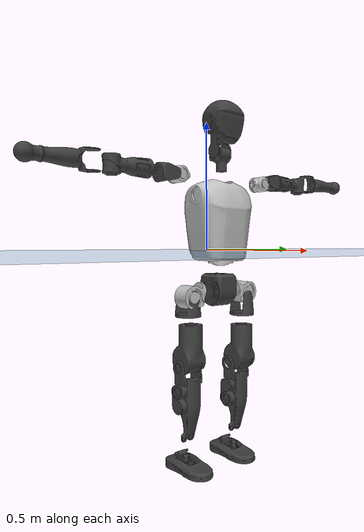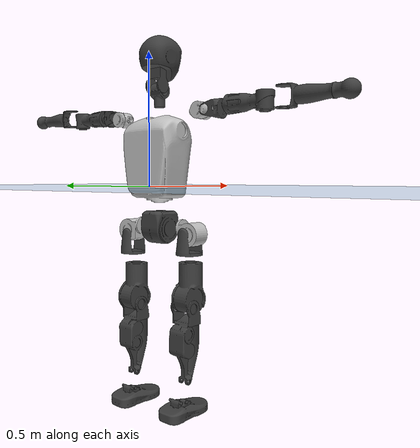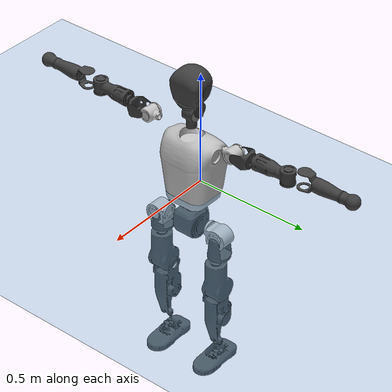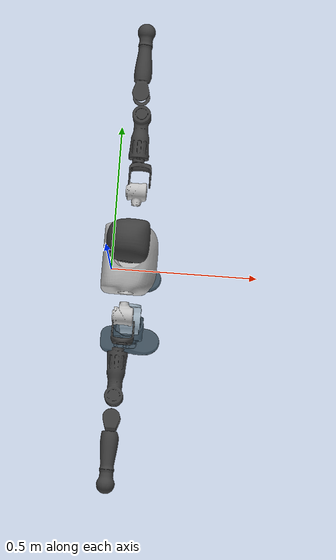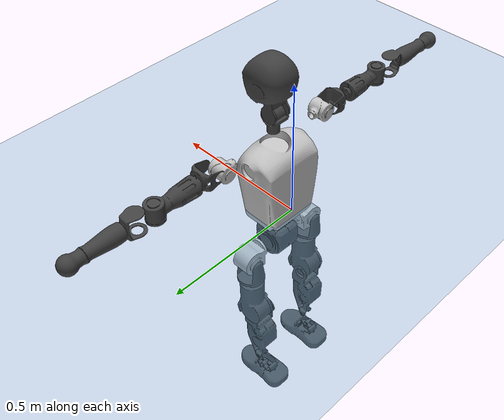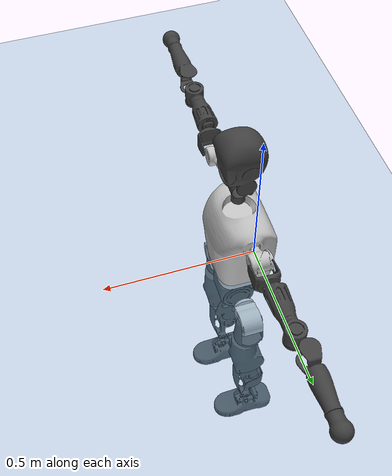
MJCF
<mujoco model="T1">
  <compiler angle="radian" assetdir="assets" balanceinertia="true" inertiafromgeom="false"/>

  <option timestep="0.005" density="1.2" viscosity="2e-05"/>

  <size nkey="1"/>

  <visual>
    <quality shadowsize="8192"/>
    <map shadowclip="0.5"/>
  </visual>

  <default>
    <default class="/">
      <joint armature="0.01" damping="0.01" frictionloss="0.1"/>
      <geom contype="0" conaffinity="0" group="1" solref="-1000 -80"/>
      <site size="0.01 0.005 0.005" group="5"/>
      <general forcelimited="true" biastype="affine" gainprm="25" biasprm="0 -25 -0.6"/>
      <default class="t1">
        <geom rgba="0.25 0.25 0.25 1"/>
        <default class="visual">
          <geom type="mesh" group="2"/>
        </default>
        <default class="collision">
          <geom group="3"/>
        </default>
        <default class="foot">
          <geom size="0.1115 0.05 0.015" type="box" condim="6" group="4" priority="1" solimp="0.015 1 0.015"/>
        </default>
        <default class="reward_collision_sphere">
          <geom group="5" rgba="1 0 0 1"/>
        </default>
      </default>
    </default>
  </default>

  <asset>
    <texture type="skybox" colorspace="auto" name="//unnamed_texture_0" builtin="gradient" rgb1="0.95 0.95 0.95" rgb2="0.95 0.95 0.95" width="100" height="600"/>
    <texture type="2d" colorspace="auto" name="texplane" builtin="checker" rgb1="0.345 0.575 0.748" rgb2="0.345 0.575 0.748" markrgb="1 1 1" width="512" height="512"/>
    <material name="MatPlane" class="/" texture="texplane" texuniform="true" texrepeat="2 2" specular="0.9"/>
    <mesh name="Trunk" class="/" file="Trunk.stl"/>
    <mesh name="H1" class="/" file="H1.stl"/>
    <mesh name="H2" class="/" file="H2.stl"/>
    <mesh name="AL1" class="/" file="AL1.stl"/>
    <mesh name="AL2" class="/" file="AL2.stl"/>
    <mesh name="AL3" class="/" file="AL3.stl"/>
    <mesh name="left_hand_link" class="/" file="left_hand_link.stl"/>
    <mesh name="AR1" class="/" file="AR1.stl"/>
    <mesh name="AR2" class="/" file="AR2.stl"/>
    <mesh name="AR3" class="/" file="AR3.stl"/>
    <mesh name="right_hand_link" class="/" file="right_hand_link.stl"/>
    <mesh name="Waist" class="/" file="Waist.stl"/>
    <mesh name="Hip_Pitch_Left" class="/" file="Hip_Pitch_Left.stl"/>
    <mesh name="Hip_Roll_Left" class="/" file="Hip_Roll_Left.stl"/>
    <mesh name="Hip_Yaw_Left" class="/" file="Hip_Yaw_Left.stl"/>
    <mesh name="Shank_Left" class="/" file="Shank_Left.stl"/>
    <mesh name="Ankle_Cross_Left" class="/" file="Ankle_Cross_Left.stl"/>
    <mesh name="left_foot_link" class="/" file="left_foot_link.stl"/>
    <mesh name="Hip_Pitch_Right" class="/" file="Hip_Pitch_Right.stl"/>
    <mesh name="Hip_Roll_Right" class="/" file="Hip_Roll_Right.stl"/>
    <mesh name="Hip_Yaw_Right" class="/" file="Hip_Yaw_Right.stl"/>
    <mesh name="Shank_Right" class="/" file="Shank_Right.stl"/>
    <mesh name="Ankle_Cross_Right" class="/" file="Ankle_Cross_Right.stl"/>
    <mesh name="right_foot_link" class="/" file="right_foot_link.stl"/>
  </asset>

  <worldbody>
    <geom name="floor" class="/" size="100 100 0.125" type="plane" group="0" material="MatPlane"/>
    <light name="toplight_shadow" class="/" pos="0 0 5" dir="0.0990148 0.0990148 -0.990148" type="directional" ambient="0.04 0.04 0.04" diffuse="0.55 0.55 0.55" specular="0.12 0.12 0.12"/>
    <light name="toplight_fill" class="/" pos="0 0 5" dir="0.0990148 0.0990148 -0.990148" type="directional" castshadow="false" ambient="0.04 0.04 0.04" diffuse="0.3 0.3 0.3" specular="0.08 0.08 0.08"/>
    <body name="trunk" childclass="t1" pos="0.0067101 0.0113263 -0.0081384" quat="0.999991 -0.000209462 0.00143258 -0.00407926">
      <inertial pos="0.0557062 0.00505543 0.127652" quat="0.999971 -0.00406661 0.00639121 0.000190411" mass="25.0637" diaginertia="0.101747 0.405811 0.173788"/>
      <joint name="//unnamed_joint_0" type="free" armature="0" damping="0" frictionloss="0"/>
      <geom name="//unnamed_geom_1" class="visual" rgba="0.76 0.76 0.76 1" mesh="Trunk"/>
      <geom name="//unnamed_geom_2" class="collision" size="0.0949167 0.126556 0.189833" pos="0.0624003 0 0.153772" type="box"/>
      <geom name="//unnamed_geom_3" class="reward_collision_sphere" size="0.145539" pos="0.0624003 0 0.128143"/>
      <geom name="//unnamed_geom_4" class="reward_collision_sphere" size="0.0189833" pos="0.0624003 0.125395 0"/>
      <geom name="//unnamed_geom_5" class="reward_collision_sphere" size="0.0189833" pos="0.0624003 -0.125395 0"/>
      <geom name="//unnamed_geom_6" class="reward_collision_sphere" size="0.0189833" pos="0.0624003 0.15785 0.230658"/>
      <geom name="//unnamed_geom_7" class="reward_collision_sphere" size="0.0189833" pos="0.0624003 -0.15785 0.230658"/>
      <site name="imu" pos="0.0462589 0.0639873 -0.00330914" size="0.0126556"/>
      <camera name="track" pos="0 -2.95046 0" quat="0.707107 0.707107 0 0" mode="trackcom"/>
      <camera name="ego_camera" pos="0.126881 0 0.538202" quat="-0.5 -0.5 0.5 0.5"/>
      <body name="H1" pos="0.0640213 0.00160476 0.311808" quat="0.999992 -0.00361351 -0.001576 -0.000718302">
        <inertial pos="-0.00863682 -0.00373355 0.0647443" quat="0.730704 0.0111859 0.0548275 0.680398" mass="0.868016" diaginertia="0.000268035 0.00129702 0.000545233"/>
        <joint name="AAHead_yaw" pos="0 0 0" axis="0.0206807 -0.0607422 0.997939" stiffness="4.13172e-05" range="-1.38134 1.51673" armature="0.00694131" damping="0.00408598" frictionloss="0.190354"/>
        <geom name="//unnamed_geom_8" class="visual" mesh="H1"/>
        <body name="H2" pos="-0.0121794 0.0025098 0.0806001" quat="1 0.00023442 0.000334626 0.000841071">
          <inertial pos="0.00578336 0.0158008 0.125733" quat="0.989738 0.107208 -0.0566504 -0.0756035" mass="1.45949" diaginertia="0.0027822 0.0181899 0.00676012"/>
          <joint name="Head_pitch" pos="0 0 0" axis="-0.00915741 -0.998464 0.0546368" stiffness="0.0344032" range="-1.16314 0.196703" armature="0.0105304" damping="0.00474826" frictionloss="0.166163"/>
          <geom name="//unnamed_geom_9" class="visual" mesh="H2"/>
          <geom name="//unnamed_geom_10" class="collision" size="0.101244" pos="0.0104 0 0.140958"/>
          <geom name="//unnamed_geom_11" class="reward_collision_sphere" size="0.1139" pos="0.0208001 0 0.128143"/>
        </body>
      </body>
      <body name="AL1" pos="0.0690282 0.164997 0.277682" quat="0.999997 0.00219665 -0.0006255 -0.000121215">
        <inertial pos="-0.00318838 0.0611533 0.0140955" quat="0.527045 0.537117 -0.470464 0.460861" mass="0.855361" diaginertia="0.00134105 0.00739868 0.000843305"/>
        <joint name="Left_Shoulder_Pitch" pos="0 0 0" axis="-0.0520336 0.998097 0.0330789" range="-3.31657 1.35612" armature="0.015731" damping="0.0151368" frictionloss="0.110021"/>
        <geom name="//unnamed_geom_12" class="visual" rgba="0.76 0.76 0.76 1" mesh="AL1"/>
        <body name="AL2" pos="0.00570323 0.0800549 0.0117501" quat="0.999968 -0.00751028 -0.00258076 0.000205587">
          <inertial pos="0.00574048 0.0712544 -0.000485458" quat="0.484918 0.515121 -0.489143 0.510142" mass="0.332654" diaginertia="0.00047432 0.00271389 0.000623279"/>
          <joint name="Left_Shoulder_Roll" pos="0 0 0" axis="-0.996965 0.0726281 0.0280472" stiffness="0.0706323" range="-1.83819 1.8433" armature="0.0172166" damping="0.0816395" frictionloss="0.0448154"/>
          <geom name="//unnamed_geom_13" class="visual" mesh="AL2"/>
          <body name="AL3" pos="-0.00929145 0.0743057 0.00209537" quat="0.999977 0.0043721 -0.00449718 0.00261189">
            <inertial pos="0.0015819 0.137798 0.0056195" quat="0.700745 0.712183 -0.0397976 -0.0129432" mass="1.83056" diaginertia="0.0171818 0.0833401 0.00279188"/>
            <joint name="Left_Elbow_Pitch" pos="0 0 0" axis="0.0409598 -0.998388 0.0393025" stiffness="0.0571934" range="-2.57794 2.55699" armature="0.00354484" damping="0.0766265" frictionloss="0.0586293"/>
            <geom name="//unnamed_geom_14" class="visual" mesh="AL3"/>
            <geom name="//unnamed_geom_15" class="collision" size="0.0379667 0.0949167" pos="0 0.0737616 0" quat="0.707105 0.707108 0 0" type="cylinder"/>
            <geom name="//unnamed_geom_16" class="reward_collision_sphere" size="0.04556"/>
            <body name="left_hand_link" pos="-0.00743415 0.2162 0.0138112" quat="0.999988 -0.000279845 -0.00147327 -0.00463619">
              <inertial pos="-5.61227e-05 0.162485 0.0119073" quat="0.713976 0.700119 0.00261827 -0.00804035" mass="0.6002" diaginertia="0.00909614 0.0595012 0.000712407"/>
              <joint name="Left_Elbow_Yaw" pos="0 0 0" axis="0.0387334 0.0223853 0.998999" range="-2.41857 0.00297379" armature="0.015518" damping="0.0122218" frictionloss="0.0717753"/>
              <geom name="//unnamed_geom_17" class="visual" mesh="left_hand_link"/>
              <geom name="//unnamed_geom_18" class="collision" size="0.0379667 0.110736" pos="0 0.19178 0" quat="0.707105 0.707108 0 0" type="cylinder"/>
              <geom name="//unnamed_geom_19" class="reward_collision_sphere" size="0.0632778"/>
              <geom name="//unnamed_geom_20" class="reward_collision_sphere" size="0.0442945" pos="0 0.162275 0"/>
              <geom name="//unnamed_geom_21" class="reward_collision_sphere" size="0.0442945" pos="0 0.317175 0"/>
            </body>
          </body>
        </body>
      </body>
      <body name="AR1" pos="0.0587719 -0.162739 0.282501" quat="0.999993 -0.0034873 0.00100251 0.000436913">
        <inertial pos="-0.000395914 -0.0534193 -0.0132685" quat="0.504809 0.497009 -0.504884 0.493197" mass="1.06919" diaginertia="0.00179852 0.00886767 0.000832312"/>
        <joint name="Right_Shoulder_Pitch" pos="0 0 0" axis="0.00162571 -0.999998 -0.000650241" range="-1.12274 3.32125" armature="0.0180157" damping="0" frictionloss="0.101856"/>
        <geom name="//unnamed_geom_22" class="visual" rgba="0.76 0.76 0.76 1" mesh="AR1"/>
        <body name="AR2" pos="0.0023214 -0.0813086 -0.000853011" quat="1 2.69279e-05 0.000147832 8.47626e-05">
          <inertial pos="0.00500962 -0.0570284 0.0140575" quat="0.480778 0.504549 -0.533049 0.47973" mass="0.273944" diaginertia="0.000514199 0.00265627 0.000659993"/>
          <joint name="Right_Shoulder_Roll" pos="0 0 0" axis="-0.999958 0.00903259 -0.00161778" range="-1.63416 1.31744" armature="0.0136418" damping="0.0724221" frictionloss="0.133322"/>
          <geom name="//unnamed_geom_23" class="visual" mesh="AR2"/>
          <body name="AR3" pos="-0.0104267 -0.0866404 0.00925392" quat="1 0.000344522 -0.000236845 -0.000759692">
            <inertial pos="-0.00599311 -0.117641 0.00301947" quat="0.705685 0.708525 0.000518822 0.000832932" mass="1.88445" diaginertia="0.0143745 0.0723142 0.00178169"/>
            <joint name="Right_Elbow_Pitch" pos="0 0 0" axis="-0.016101 0.999542 -0.025606" stiffness="0.046145" range="-2.28681 2.25075" armature="0.00408456" damping="0" frictionloss="0.209697"/>
            <geom name="//unnamed_geom_24" class="visual" mesh="AR3"/>
            <geom name="//unnamed_geom_25" class="collision" size="0.0379667 0.0949167" pos="0 -0.0737616 0" quat="0.707105 0.707108 0 0" type="cylinder"/>
            <geom name="//unnamed_geom_26" class="reward_collision_sphere" size="0.04556"/>
            <body name="right_hand_link" pos="-0.00124518 -0.21822 0.00344311" quat="0.999991 0.00133968 0.00158966 -0.00379153">
              <inertial pos="0.00464437 -0.16033 0.0156398" quat="0.669679 0.740789 -0.0170673 -0.049704" mass="0.538795" diaginertia="0.0117107 0.0567812 0.0006698"/>
              <joint name="Right_Elbow_Yaw" pos="0 0 0" axis="-0.022692 -0.035436 0.999114" stiffness="0.0629881" range="0.266054 2.15134" armature="0.0154423" damping="0.0293858" frictionloss="0.0954778"/>
              <geom name="//unnamed_geom_27" class="visual" mesh="right_hand_link"/>
              <geom name="//unnamed_geom_28" class="collision" size="0.0379667 0.110736" pos="0 -0.19178 0" quat="0.707105 0.707108 0 0" type="cylinder"/>
              <geom name="//unnamed_geom_29" class="reward_collision_sphere" size="0.0632778"/>
              <geom name="//unnamed_geom_30" class="reward_collision_sphere" size="0.0442945" pos="0 -0.162275 0"/>
              <geom name="//unnamed_geom_31" class="reward_collision_sphere" size="0.0442945" pos="0 -0.317175 0"/>
            </body>
          </body>
        </body>
      </body>
      <body name="Waist" pos="0.0574733 -0.00612912 -0.15088" quat="0.999995 0.000424401 0.00204548 -0.00241892">
        <inertial pos="-0.000333973 -0.000271944 0.00144626" quat="0.987511 -0.0256438 -0.154229 0.0194137" mass="5.89698" diaginertia="0.00753882 0.0382431 0.0164023"/>
        <joint name="Waist" pos="0 0 0" axis="-0.0578628 -0.0248729 0.998015" stiffness="0.0779134" range="-1.54892 1.59693" armature="0.00885332" damping="0" frictionloss="0.202256"/>
        <geom name="//unnamed_geom_32" class="visual" mesh="Waist"/>
        <body name="Hip_Pitch_Left" pos="-0.00568527 0.143619 0.0061289" quat="0.999995 0.00176364 0.000815281 0.002529">
          <inertial pos="-0.0134255 -0.0182806 -0.0105391" quat="0.969637 0.237977 -0.0533945 0.0178684" mass="1.79077" diaginertia="0.00213832 0.0100835 0.00392808"/>
          <joint name="Left_Hip_Pitch" pos="0 0 0" axis="-0.0362058 0.999322 -0.0066849" stiffness="0.00336222" range="-1.82983 1.30893" armature="0.013866" damping="0.0655824" frictionloss="0.147345"/>
          <geom name="//unnamed_geom_33" class="visual" rgba="0.76 0.76 0.76 1" mesh="Hip_Pitch_Left"/>
          <body name="Hip_Roll_Left" pos="-0.000837602 -0.00404663 -0.0385451" quat="0.999997 -0.00220536 -0.000158777 -0.00114025">
            <inertial pos="0.0107814 -0.0114887 -0.068533" quat="0.67425 -0.0292525 -0.0112522 0.737838" mass="0.872444" diaginertia="0.00208017 0.0144575 0.00215223"/>
            <joint name="Left_Hip_Roll" pos="0 0 0" axis="-0.99942 0.0262225 -0.0217275" stiffness="0.0131939" range="-1.57106 0.0569926" armature="0.0123145" damping="0" frictionloss="0.19087"/>
            <geom name="//unnamed_geom_34" class="visual" mesh="Hip_Roll_Left"/>
            <geom name="//unnamed_geom_35" class="reward_collision_sphere" size="0.0696056"/>
            <body name="Hip_Yaw_Left" pos="0.0065292 -0.010775 -0.115588" quat="1 -0.000337737 -0.000560916 -0.000472451">
              <inertial pos="-0.00788085 0.000322597 -0.111837" quat="0.717852 -0.0385839 0.0314405 0.694414" mass="5.49129" diaginertia="0.0338687 0.186178 0.0105709"/>
              <joint name="Left_Hip_Yaw" pos="0 0 0" axis="-0.0657038 -0.0105708 -0.997783" stiffness="0.0156507" range="-1.16446 1.22345" armature="0.0139654" damping="0" frictionloss="0.125989"/>
              <geom name="//unnamed_geom_36" class="visual" mesh="Hip_Yaw_Left"/>
              <geom name="//unnamed_geom_37" class="collision" size="0.0632778 0.101244" type="cylinder"/>
              <body name="Shank_Left" pos="-0.0254197 -0.0127614 -0.159439" quat="1 0.000234398 -0.000111891 -0.000380421">
                <inertial pos="-0.0100325 0.0148568 -0.159693" quat="0.998148 -0.00720332 -0.0201356 0.0569416" mass="3.56635" diaginertia="0.0347297 0.240604 0.00529978"/>
                <joint name="Left_Knee_Pitch" pos="0 0 0" axis="-0.0199214 0.999696 0.0145612" range="-0.162373 2.35671" armature="0.00892382" damping="0" frictionloss="0.0260444"/>
                <geom name="//unnamed_geom_38" class="visual" mesh="Shank_Left"/>
                <geom name="//unnamed_geom_39" class="collision" size="0.0632778 0.0949167" pos="0 0 -0.153772" type="cylinder"/>
                <geom name="//unnamed_geom_40" class="reward_collision_sphere" size="0.0822612"/>
                <body name="Ankle_Cross_Left" pos="-0.00533544 -0.00378106 -0.349483" quat="1 0.000155426 1.73989e-05 0.000189375">
                  <inertial pos="-0.00259381 0.00155076 -0.0188997" quat="0.438024 0.541934 0.55368 0.455939" mass="0.198672" diaginertia="3.63007e-05 0.000253547 4.8216e-05"/>
                  <joint name="Left_Ankle_Pitch" pos="0 0 0" axis="0.063049 0.997293 -0.0378436" stiffness="0.0704362" range="-0.749134 0.436759" armature="0.0126681" damping="0.00156552" frictionloss="0.17408"/>
                  <geom name="//unnamed_geom_41" class="visual" mesh="Ankle_Cross_Left"/>
                  <body name="left_foot_link" pos="0.000793652 -0.00816746 -0.0163173" quat="0.999973 0.00601942 0.00215639 -0.00360696">
                    <inertial pos="-0.0138049 0.000255275 -0.00511265" quat="-0.044819 0.593905 -0.0147038 0.803151" mass="1.28636" diaginertia="0.00300449 0.0150388 0.0077933"/>
                    <joint name="Left_Ankle_Roll" pos="0 0 0" axis="-0.999849 0.00560733 0.0164357" stiffness="0.00152504" range="-0.470702 0.606196" armature="0.0125189" damping="0.0582568" frictionloss="0.0872029"/>
                    <geom name="//unnamed_geom_42" class="visual" mesh="left_foot_link"/>
                    <geom name="left_foot" class="foot" size="0.0854417 0.0784862 0.0302015" pos="0.0104 0 -0.0192215"/>
                    <geom name="//unnamed_geom_44" class="reward_collision_sphere" size="0.0658089" pos="0.0104 0 -0.0192215"/>
                    <geom name="//unnamed_geom_45" class="reward_collision_sphere" size="0.0379667" pos="0.0988005 -0.0339303 -0.0192215"/>
                    <geom name="//unnamed_geom_46" class="reward_collision_sphere" size="0.0379667" pos="-0.0728003 -0.0339303 -0.0192215"/>
                    <site name="left_foot" class="foot" pos="0.0104 0 -0.0192215" size="0.0126556"/>
                  </body>
                </body>
              </body>
            </body>
          </body>
        </body>
        <body name="Hip_Pitch_Right" pos="0.0113698 -0.15741 0.00450976" quat="0.999988 -0.00106777 -0.00387586 0.00279852">
          <inertial pos="0.00919924 0.0163307 -0.034663" quat="0.972327 -0.232997 0.0151968 -0.00777844" mass="1.95076" diaginertia="0.00187669 0.00897919 0.00395964"/>
          <joint name="Right_Hip_Pitch" pos="0 0 0" axis="0.00197574 -0.999844 0.0175705" range="-1.56084 1.818" armature="0.0134904" damping="0.0527148" frictionloss="0.0612252"/>
          <geom name="//unnamed_geom_47" class="visual" rgba="0.76 0.76 0.76 1" mesh="Hip_Pitch_Right"/>
          <body name="Hip_Roll_Right" pos="-0.0121487 0.00522117 -0.0185253" quat="1 -0.00029993 -0.000640551 -0.000312534">
            <inertial pos="0.0137049 0.00814372 -0.0577474" quat="0.730207 -0.0269426 -0.00716322 0.682657" mass="0.665261" diaginertia="0.0020879 0.0106699 0.00194211"/>
            <joint name="Right_Hip_Roll" pos="0 0 0" axis="-0.99969 -0.00567597 0.0242624" stiffness="0.000124353" range="-0.0244607 1.63357" armature="0.00713594" damping="0.00252869" frictionloss="0.177244"/>
            <geom name="//unnamed_geom_48" class="visual" mesh="Hip_Roll_Right"/>
            <geom name="//unnamed_geom_49" class="reward_collision_sphere" size="0.0696056"/>
            <body name="Hip_Yaw_Right" pos="0.00906254 0.00314749 -0.106202" quat="1 0.000291178 0.000155349 0.000111766">
              <inertial pos="-0.00924791 0.0124285 -0.12848" quat="0.706777 -0.0182814 -0.0317837 0.706485" mass="3.56782" diaginertia="0.0297458 0.12729 0.00859452"/>
              <joint name="Right_Hip_Yaw" pos="0 0 0" axis="-0.00409456 0.00738235 -0.999964" range="-0.965865 0.997492" armature="0.0218796" damping="0.0434839" frictionloss="0.148801"/>
              <geom name="//unnamed_geom_50" class="visual" mesh="Hip_Yaw_Right"/>
              <geom name="//unnamed_geom_51" class="collision" size="0.0632778 0.101244" type="cylinder"/>
              <body name="Shank_Right" pos="-0.0280052 0.00359126 -0.165372" quat="1 -3.58422e-06 2.91905e-06 -6.96052e-06">
                <inertial pos="-0.0207854 -0.0160023 -0.163043" quat="0.997386 -0.001763 -0.0716362 -0.00929682" mass="2.97849" diaginertia="0.0280748 0.21508 0.00614045"/>
                <joint name="Right_Knee_Pitch" pos="0 0 0" axis="-0.0351566 -0.997641 -0.058957" stiffness="0.0248027" range="-2.34624 -0.0116655" armature="0.00990516" damping="0" frictionloss="0.078877"/>
                <geom name="//unnamed_geom_52" class="visual" mesh="Shank_Right"/>
                <geom name="//unnamed_geom_53" class="collision" size="0.0632778 0.0949167" pos="0 0 -0.153772" type="cylinder"/>
                <geom name="//unnamed_geom_54" class="reward_collision_sphere" size="0.0822612"/>
                <body name="Ankle_Cross_Right" pos="-0.00839753 -0.00537614 -0.356254" quat="0.999997 -0.000226851 0.00178963 0.00167183">
                  <inertial pos="-0.00997286 -0.00852126 -0.0110968" quat="0.444801 0.536799 0.535559 0.476629" mass="0.16839" diaginertia="3.06855e-05 0.000180594 4.34967e-05"/>
                  <joint name="Right_Ankle_Pitch" pos="0 0 0" axis="-0.04738 -0.996867 0.0633287" stiffness="0.0187365" range="-0.233839 0.851001" armature="0.0097105" damping="0" frictionloss="0.0927577"/>
                  <geom name="//unnamed_geom_55" class="visual" mesh="Ankle_Cross_Right"/>
                  <body name="right_foot_link" pos="0.00597858 0.0115269 -0.0263638" quat="1 0.000433597 6.25602e-05 2.79728e-05">
                    <inertial pos="-0.014714 -0.000125409 -0.0210967" quat="0.0276505 0.654037 0.0166386 0.755774" mass="1.37515" diaginertia="0.00267874 0.0171188 0.00838331"/>
                    <joint name="Right_Ankle_Roll" pos="0 0 0" axis="-0.998329 -0.0310919 0.0486994" stiffness="0.00252351" range="-0.422862 0.565075" armature="0.0084684" damping="0.0010234" frictionloss="0.212531"/>
                    <geom name="//unnamed_geom_56" class="visual" mesh="right_foot_link"/>
                    <geom name="right_foot" class="foot" size="0.0876815 0.0739686 0.0254229" pos="0.0104 0 -0.0192215"/>
                    <geom name="//unnamed_geom_58" class="reward_collision_sphere" size="0.0506222"/>
                    <geom name="//unnamed_geom_59" class="reward_collision_sphere" size="0.0379667" pos="0.0104 0 -0.0192215"/>
                    <geom name="//unnamed_geom_60" class="reward_collision_sphere" size="0.0379667" pos="0.0988005 0.0339303 -0.0192215"/>
                    <geom name="//unnamed_geom_61" class="reward_collision_sphere" size="0.0379667" pos="-0.0728003 0.0339303 -0.0192215"/>
                    <site name="right_foot" class="foot" pos="0.0104 0 -0.0192215" size="0.0126556"/>
                  </body>
                </body>
              </body>
            </body>
          </body>
        </body>
      </body>
    </body>
  </worldbody>

  <contact>
    <pair class="/" geom1="floor" geom2="left_foot" name="//unnamed_contact_0"/>
    <pair class="/" geom1="floor" geom2="right_foot" name="//unnamed_contact_1"/>
  </contact>

  <actuator>
    <general name="AAHead_yaw" class="/" joint="AAHead_yaw" forcerange="-13.0691 13.0691" gainprm="34.7949" biasprm="0 -34.7949 -0.748288"/>
    <general name="Head_pitch" class="/" joint="Head_pitch" forcerange="-6.80786 6.80786" gainprm="34.7949" biasprm="0 -34.7949 -0.748288"/>
    <general name="Left_Shoulder_Pitch" class="/" joint="Left_Shoulder_Pitch" forcerange="-22.3914 22.3914" gainprm="34.7949" biasprm="0 -34.7949 -0.748288"/>
    <general name="Left_Shoulder_Roll" class="/" joint="Left_Shoulder_Roll" forcerange="-16.8273 16.8273" gainprm="34.7949" biasprm="0 -34.7949 -0.748288"/>
    <general name="Left_Elbow_Pitch" class="/" joint="Left_Elbow_Pitch" forcerange="-13.3631 13.3631" gainprm="34.7949" biasprm="0 -34.7949 -0.748288"/>
    <general name="Left_Elbow_Yaw" class="/" joint="Left_Elbow_Yaw" forcerange="-10.228 10.228" gainprm="34.7949" biasprm="0 -34.7949 -0.748288"/>
    <general name="Right_Shoulder_Pitch" class="/" joint="Right_Shoulder_Pitch" forcerange="-23.5723 23.5723" gainprm="34.7949" biasprm="0 -34.7949 -0.748288"/>
    <general name="Right_Shoulder_Roll" class="/" joint="Right_Shoulder_Roll" forcerange="-13.3015 13.3015" gainprm="34.7949" biasprm="0 -34.7949 -0.748288"/>
    <general name="Right_Elbow_Pitch" class="/" joint="Right_Elbow_Pitch" forcerange="-15.1136 15.1136" gainprm="34.7949" biasprm="0 -34.7949 -0.748288"/>
    <general name="Right_Elbow_Yaw" class="/" joint="Right_Elbow_Yaw" forcerange="-31.6986 31.6986" gainprm="34.7949" biasprm="0 -34.7949 -0.748288"/>
    <general name="Waist" class="/" joint="Waist" forcerange="-39.0491 39.0491" gainprm="34.7949" biasprm="0 -34.7949 -0.748288"/>
    <general name="Left_Hip_Pitch" class="/" joint="Left_Hip_Pitch" forcerange="-38.421 38.421" gainprm="34.7949" biasprm="0 -34.7949 -0.748288"/>
    <general name="Left_Hip_Roll" class="/" joint="Left_Hip_Roll" forcerange="-42.0623 42.0623" gainprm="34.7949" biasprm="0 -34.7949 -0.748288"/>
    <general name="Left_Hip_Yaw" class="/" joint="Left_Hip_Yaw" forcerange="-30.2687 30.2687" gainprm="34.7949" biasprm="0 -34.7949 -0.748288"/>
    <general name="Left_Knee_Pitch" class="/" joint="Left_Knee_Pitch" forcerange="-73.3292 73.3292" gainprm="34.7949" biasprm="0 -34.7949 -0.748288"/>
    <general name="Left_Ankle_Pitch" class="/" joint="Left_Ankle_Pitch" forcerange="-20.8238 20.8238" gainprm="34.7949" biasprm="0 -34.7949 -0.748288"/>
    <general name="Left_Ankle_Roll" class="/" joint="Left_Ankle_Roll" forcerange="-19.0579 19.0579" gainprm="34.7949" biasprm="0 -34.7949 -0.748288"/>
    <general name="Right_Hip_Pitch" class="/" joint="Right_Hip_Pitch" forcerange="-59.6588 59.6588" gainprm="34.7949" biasprm="0 -34.7949 -0.748288"/>
    <general name="Right_Hip_Roll" class="/" joint="Right_Hip_Roll" forcerange="-36.9736 36.9736" gainprm="34.7949" biasprm="0 -34.7949 -0.748288"/>
    <general name="Right_Hip_Yaw" class="/" joint="Right_Hip_Yaw" forcerange="-37.5256 37.5256" gainprm="34.7949" biasprm="0 -34.7949 -0.748288"/>
    <general name="Right_Knee_Pitch" class="/" joint="Right_Knee_Pitch" forcerange="-97.7409 97.7409" gainprm="34.7949" biasprm="0 -34.7949 -0.748288"/>
    <general name="Right_Ankle_Pitch" class="/" joint="Right_Ankle_Pitch" forcerange="-35.7138 35.7138" gainprm="34.7949" biasprm="0 -34.7949 -0.748288"/>
    <general name="Right_Ankle_Roll" class="/" joint="Right_Ankle_Roll" forcerange="-12.6819 12.6819" gainprm="34.7949" biasprm="0 -34.7949 -0.748288"/>
  </actuator>

  <sensor>
    <gyro site="imu" name="imu_angular_velocity"/>
    <velocimeter site="imu" name="imu_linear_velocity"/>
    <framelinvel objtype="site" objname="left_foot" name="left_foot_global_linear_velocity"/>
    <framelinvel objtype="site" objname="right_foot" name="right_foot_global_linear_velocity"/>
  </sensor>

  <keyframe>
    <key name="home" qpos="0 0 0.6385 1 0 0 0 0 0 0 1.4 0 -0.4 0 -1.4 0 0.4 0 -0.4 0 0 0.8 -0.4 0 0.4 0 0 -0.8 0.4 0"/>
  </keyframe>
</mujoco>
